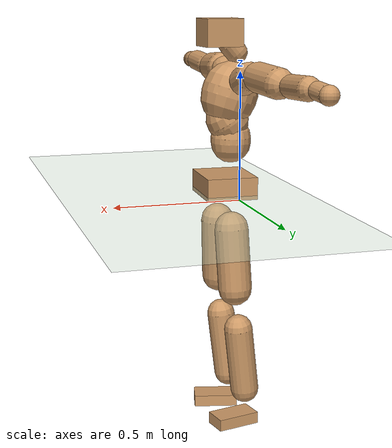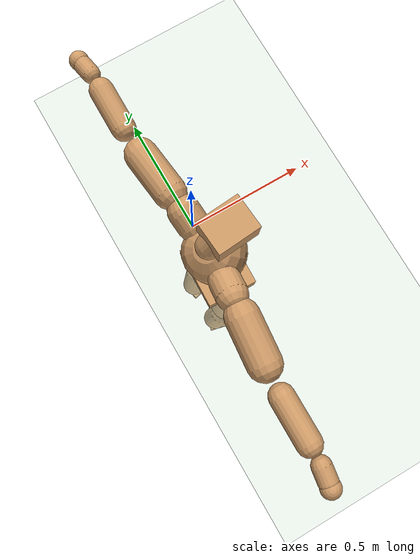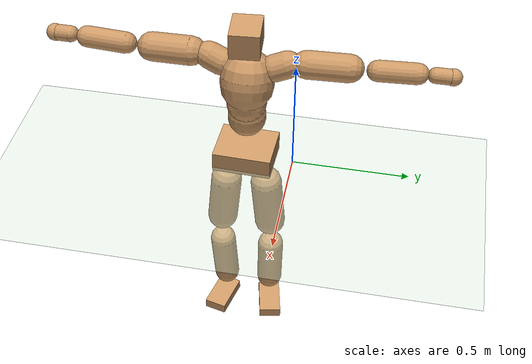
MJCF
<mujoco model="humanoid">
  <compiler coordinate="local" angle="radian"/>
  <default>
    <joint damping="0.0" armature="0.01" stiffness="0.0" limited="true"/>
    <geom conaffinity="1" condim="3" contype="7" margin="0.001" rgba="0.8 0.6 .4 1"/>
  </default>
  <asset>
    <texture type="skybox" builtin="gradient" rgb1=".4 .5 .6" rgb2="0 0 0" width="100" height="100"/>
    <texture builtin="flat" height="1278" mark="cross" markrgb="1 1 1" name="texgeom" random="0.01" rgb1="0.8 0.6 0.4" rgb2="0.8 0.6 0.4" type="cube" width="127"/>
    <texture builtin="checker" height="100" name="texplane" rgb1="0 0 0" rgb2="0.8 0.8 0.8" type="2d" width="100"/>
    <material name="MatPlane" reflectance="0.5" shininess="1" specular="1" texrepeat="60 60" texture="texplane"/>
    <material name="geom" texture="texgeom" texuniform="true"/>
  </asset>
  <worldbody>
    <light cutoff="100" diffuse="1 1 1" dir="-0 0 -1.3" directional="true" exponent="1" pos="0 0 1.3" specular=".1 .1 .1"/>
    <geom conaffinity="1" condim="3" name="floor" pos="0 0 0" rgba="0.8 0.9 0.8 1" size="100 100 .2" type="plane" material="MatPlane"/>
    <body name="Pelvis" pos="0.0018 -0.204 0.0402">
      <freejoint name="Pelvis"/>
      <geom type="box" contype="1" conaffinity="1" density="500" pos="-0.0056 0.0002 -0.0139" size="0.1033 0.1258 0.0449" quat="0.9999 0.0000 0.0000 -0.0163" name="Pelvis"/>
      <body name="L_Hip" pos="-0.0039 0.083 -0.0976">
        <joint name="L_Hip_x" type="hinge" pos="0 0 0" axis="1 0 0" stiffness="800" damping="80" armature="0.02" range="-180.0000 180.0000"/>
        <joint name="L_Hip_y" type="hinge" pos="0 0 0" axis="0 1 0" stiffness="800" damping="80" armature="0.02" range="-180.0000 180.0000"/>
        <joint name="L_Hip_z" type="hinge" pos="0 0 0" axis="0 0 1" stiffness="800" damping="80" armature="0.02" range="-180.0000 180.0000"/>
        <geom type="capsule" contype="1" conaffinity="1" density="500" fromto="-0.0037 0.0064 -0.0833 -0.0148 0.0256 -0.3332" size="0.0689" name="L_Hip"/>
        <body name="L_Knee" pos="-0.0185 0.0319 -0.4165">
          <joint name="L_Knee_x" type="hinge" pos="0 0 0" axis="1 0 0" stiffness="800" damping="80" armature="0.02" range="-180.0000 180.0000"/>
          <joint name="L_Knee_y" type="hinge" pos="0 0 0" axis="0 1 0" stiffness="800" damping="80" armature="0.02" range="-180.0000 180.0000"/>
          <joint name="L_Knee_z" type="hinge" pos="0 0 0" axis="0 0 1" stiffness="800" damping="80" armature="0.02" range="-180.0000 180.0000"/>
          <geom type="capsule" contype="1" conaffinity="1" density="500" fromto="-0.0106 -0.0026 -0.0904 -0.0424 -0.0103 -0.3615" size="0.0586" name="L_Knee"/>
          <body name="L_Ankle" pos="-0.0531 -0.0128 -0.4519">
            <joint name="L_Ankle_x" type="hinge" pos="0 0 0" axis="1 0 0" stiffness="800" damping="80" armature="0.02" range="-180.0000 180.0000"/>
            <joint name="L_Ankle_y" type="hinge" pos="0 0 0" axis="0 1 0" stiffness="800" damping="80" armature="0.02" range="-180.0000 180.0000"/>
            <joint name="L_Ankle_z" type="hinge" pos="0 0 0" axis="0 0 1" stiffness="800" damping="80" armature="0.02" range="-180.0000 180.0000"/>
            <geom type="box" contype="1" conaffinity="1" density="500" pos="0.0628 0.0134 -0.0320" size="0.0895 0.0502 0.0241" quat="0.9945 0.0000 0.0000 0.1051" name="L_Ankle"/>
            <body name="L_Toe" pos="0.1255 0.0268 -0.064">
              <joint name="L_Toe_x" type="hinge" pos="0 0 0" axis="1 0 0" stiffness="500" damping="50" armature="0.02" range="-180.0000 180.0000"/>
              <joint name="L_Toe_y" type="hinge" pos="0 0 0" axis="0 1 0" stiffness="500" damping="50" armature="0.02" range="-180.0000 180.0000"/>
              <joint name="L_Toe_z" type="hinge" pos="0 0 0" axis="0 0 1" stiffness="500" damping="50" armature="0.02" range="-180.0000 180.0000"/>
              <geom type="box" contype="1" conaffinity="1" density="500" pos="0.0000 0.0000 0.0307" size="0.0011 0.0025 0.0011" quat="0.9938 0.0000 0.0000 0.1109" name="L_Toe"/>
            </body>
          </body>
        </body>
      </body>
      <body name="R_Hip" pos="0.0008 -0.0803 -0.098">
        <joint name="R_Hip_x" type="hinge" pos="0 0 0" axis="1 0 0" stiffness="800" damping="80" armature="0.02" range="-180.0000 180.0000"/>
        <joint name="R_Hip_y" type="hinge" pos="0 0 0" axis="0 1 0" stiffness="800" damping="80" armature="0.02" range="-180.0000 180.0000"/>
        <joint name="R_Hip_z" type="hinge" pos="0 0 0" axis="0 0 1" stiffness="800" damping="80" armature="0.02" range="-180.0000 180.0000"/>
        <geom type="capsule" contype="1" conaffinity="1" density="500" fromto="-0.0040 -0.0082 -0.0840 -0.0159 -0.0327 -0.3361" size="0.0679" name="R_Hip"/>
        <body name="R_Knee" pos="-0.0199 -0.0409 -0.4202">
          <joint name="R_Knee_x" type="hinge" pos="0 0 0" axis="1 0 0" stiffness="800" damping="80" armature="0.02" range="-180.0000 180.0000"/>
          <joint name="R_Knee_y" type="hinge" pos="0 0 0" axis="0 1 0" stiffness="800" damping="80" armature="0.02" range="-180.0000 180.0000"/>
          <joint name="R_Knee_z" type="hinge" pos="0 0 0" axis="0 0 1" stiffness="800" damping="80" armature="0.02" range="-180.0000 180.0000"/>
          <geom type="capsule" contype="1" conaffinity="1" density="500" fromto="-0.0102 0.0032 -0.0908 -0.0409 0.0127 -0.3632" size="0.0586" name="R_Knee"/>
          <body name="R_Ankle" pos="-0.0511 0.0159 -0.4541">
            <joint name="R_Ankle_x" type="hinge" pos="0 0 0" axis="1 0 0" stiffness="800" damping="80" armature="0.02" range="-180.0000 180.0000"/>
            <joint name="R_Ankle_y" type="hinge" pos="0 0 0" axis="0 1 0" stiffness="800" damping="80" armature="0.02" range="-180.0000 180.0000"/>
            <joint name="R_Ankle_z" type="hinge" pos="0 0 0" axis="0 0 1" stiffness="800" damping="80" armature="0.02" range="-180.0000 180.0000"/>
            <geom type="box" contype="1" conaffinity="1" density="500" pos="0.0653 -0.0155 -0.0276" size="0.0919 0.0512 0.0238" quat="0.9932 0.0000 0.0000 -0.1164" name="R_Ankle"/>
            <body name="R_Toe" pos="0.1307 -0.0311 -0.0552">
              <joint name="R_Toe_x" type="hinge" pos="0 0 0" axis="1 0 0" stiffness="500" damping="50" armature="0.02" range="-180.0000 180.0000"/>
              <joint name="R_Toe_y" type="hinge" pos="0 0 0" axis="0 1 0" stiffness="500" damping="50" armature="0.02" range="-180.0000 180.0000"/>
              <joint name="R_Toe_z" type="hinge" pos="0 0 0" axis="0 0 1" stiffness="500" damping="50" armature="0.02" range="-180.0000 180.0000"/>
              <geom type="box" contype="1" conaffinity="1" density="500" pos="0.0000 0.0000 0.0289" size="0.001 0.0025 0.0012" quat="0.9942 0.0000 0.0000 -0.1076" name="R_Toe"/>
            </body>
          </body>
        </body>
      </body>
      <body name="Torso" pos="-0.0306 -0.0016 0.1119">
        <joint name="Torso_x" type="hinge" pos="0 0 0" axis="1 0 0" stiffness="1000" damping="100" armature="0.02" range="-180.0000 180.0000"/>
        <joint name="Torso_y" type="hinge" pos="0 0 0" axis="0 1 0" stiffness="1000" damping="100" armature="0.02" range="-180.0000 180.0000"/>
        <joint name="Torso_z" type="hinge" pos="0 0 0" axis="0 0 1" stiffness="1000" damping="100" armature="0.02" range="-180.0000 180.0000"/>
        <geom type="capsule" contype="1" conaffinity="1" density="500" fromto="-0.0011 0.0008 0.0665 -0.0008 0.0006 0.0444" size="0.0815" name="Torso"/>
        <body name="Spine" pos="-0.0019 0.0014 0.1109">
          <joint name="Spine_x" type="hinge" pos="0 0 0" axis="1 0 0" stiffness="1000" damping="100" armature="0.02" range="-180.0000 180.0000"/>
          <joint name="Spine_y" type="hinge" pos="0 0 0" axis="0 1 0" stiffness="1000" damping="100" armature="0.02" range="-180.0000 180.0000"/>
          <joint name="Spine_z" type="hinge" pos="0 0 0" axis="0 0 1" stiffness="1000" damping="100" armature="0.02" range="-180.0000 180.0000"/>
          <geom type="capsule" contype="1" conaffinity="1" density="500" fromto="0.0202 0.0010 0.0297 0.0135 0.0007 0.0198" size="0.0842" name="Spine"/>
          <body name="Chest" pos="0.0337 0.0017 0.0494">
            <joint name="Chest_x" type="hinge" pos="0 0 0" axis="1 0 0" stiffness="1000" damping="100" armature="0.02" range="-180.0000 180.0000"/>
            <joint name="Chest_y" type="hinge" pos="0 0 0" axis="0 1 0" stiffness="1000" damping="100" armature="0.02" range="-180.0000 180.0000"/>
            <joint name="Chest_z" type="hinge" pos="0 0 0" axis="0 0 1" stiffness="1000" damping="100" armature="0.02" range="-180.0000 180.0000"/>
            <geom type="capsule" contype="1" conaffinity="1" density="500" fromto="-0.0323 -0.0004 0.0999 -0.0216 -0.0003 0.0666" size="0.113" name="Chest"/>
            <body name="Neck" pos="-0.0638 -0.0004 0.2339">
              <joint name="Neck_x" type="hinge" pos="0 0 0" axis="1 0 0" stiffness="500" damping="50" armature="0.02" range="-180.0000 180.0000"/>
              <joint name="Neck_y" type="hinge" pos="0 0 0" axis="0 1 0" stiffness="500" damping="50" armature="0.02" range="-180.0000 180.0000"/>
              <joint name="Neck_z" type="hinge" pos="0 0 0" axis="0 0 1" stiffness="500" damping="50" armature="0.02" range="-180.0000 180.0000"/>
              <geom type="capsule" contype="1" conaffinity="1" density="500" fromto="0.0106 0.0005 0.0120 0.0424 0.0019 0.0478" size="0.0451" name="Neck"/>
              <body name="Head" pos="0.053 0.0024 0.0598">
                <joint name="Head_x" type="hinge" pos="0 0 0" axis="1 0 0" stiffness="500" damping="50" armature="0.02" range="-180.0000 180.0000"/>
                <joint name="Head_y" type="hinge" pos="0 0 0" axis="0 1 0" stiffness="500" damping="50" armature="0.02" range="-180.0000 180.0000"/>
                <joint name="Head_z" type="hinge" pos="0 0 0" axis="0 0 1" stiffness="500" damping="50" armature="0.02" range="-180.0000 180.0000"/>
                <geom type="box" contype="1" conaffinity="1" density="500" pos="0.0275 0.0022 0.0309" size="0.0767 0.062 0.0545" quat="0.9992 0.0000 0.0000 0.0399" name="Head"/>
              </body>
            </body>
            <body name="L_Thorax" pos="-0.0466 0.0866 0.1335">
              <joint name="L_Thorax_x" type="hinge" pos="0 0 0" axis="1 0 0" stiffness="500" damping="50" armature="0.02" range="-180.0000 180.0000"/>
              <joint name="L_Thorax_y" type="hinge" pos="0 0 0" axis="0 1 0" stiffness="500" damping="50" armature="0.02" range="-180.0000 180.0000"/>
              <joint name="L_Thorax_z" type="hinge" pos="0 0 0" axis="0 0 1" stiffness="500" damping="50" armature="0.02" range="-180.0000 180.0000"/>
              <geom type="capsule" contype="1" conaffinity="1" density="500" fromto="-0.0022 0.0184 0.0072 -0.0088 0.0738 0.0290" size="0.0577" name="L_Thorax"/>
              <body name="L_Shoulder" pos="-0.011 0.0922 0.0362">
                <joint name="L_Shoulder_x" type="hinge" pos="0 0 0" axis="1 0 0" stiffness="500" damping="50" armature="0.02" range="-720.0000 720.0000"/>
                <joint name="L_Shoulder_y" type="hinge" pos="0 0 0" axis="0 1 0" stiffness="500" damping="50" armature="0.02" range="-720.0000 720.0000"/>
                <joint name="L_Shoulder_z" type="hinge" pos="0 0 0" axis="0 0 1" stiffness="500" damping="50" armature="0.02" range="-720.0000 720.0000"/>
                <geom type="capsule" contype="1" conaffinity="1" density="500" fromto="-0.0062 0.0573 -0.0028 -0.0247 0.2294 -0.0110" size="0.059" name="L_Shoulder"/>
                <body name="L_Elbow" pos="-0.0308 0.2867 -0.0138">
                  <joint name="L_Elbow_x" type="hinge" pos="0 0 0" axis="1 0 0" stiffness="500" damping="50" armature="0.02" range="-720.0000 720.0000"/>
                  <joint name="L_Elbow_y" type="hinge" pos="0 0 0" axis="0 1 0" stiffness="500" damping="50" armature="0.02" range="-720.0000 720.0000"/>
                  <joint name="L_Elbow_z" type="hinge" pos="0 0 0" axis="0 0 1" stiffness="500" damping="50" armature="0.02" range="-720.0000 720.0000"/>
                  <geom type="capsule" contype="1" conaffinity="1" density="500" fromto="0.0002 0.0533 0.0027 0.0008 0.2131 0.0107" size="0.0442" name="L_Elbow"/>
                  <body name="L_Wrist" pos="0.001 0.2664 0.0134">
                    <joint name="L_Wrist_x" type="hinge" pos="0 0 0" axis="1 0 0" stiffness="300" damping="30" armature="0.02" range="-180.0000 180.0000"/>
                    <joint name="L_Wrist_y" type="hinge" pos="0 0 0" axis="0 1 0" stiffness="300" damping="30" armature="0.02" range="-180.0000 180.0000"/>
                    <joint name="L_Wrist_z" type="hinge" pos="0 0 0" axis="0 0 1" stiffness="300" damping="30" armature="0.02" range="-180.0000 180.0000"/>
                    <geom type="capsule" contype="1" conaffinity="1" density="500" fromto="-0.0029 0.0175 -0.0021 -0.0116 0.0700 -0.0084" size="0.0332" name="L_Wrist"/>
                    <body name="L_Hand" pos="-0.0145 0.0876 -0.0105">
                      <joint name="L_Hand_x" type="hinge" pos="0 0 0" axis="1 0 0" stiffness="300" damping="30" armature="0.02" range="-180.0000 180.0000"/>
                      <joint name="L_Hand_y" type="hinge" pos="0 0 0" axis="0 1 0" stiffness="300" damping="30" armature="0.02" range="-180.0000 180.0000"/>
                      <joint name="L_Hand_z" type="hinge" pos="0 0 0" axis="0 0 1" stiffness="300" damping="30" armature="0.02" range="-180.0000 180.0000"/>
                      <geom type="sphere" contype="1" conaffinity="1" density="500" size="0.0352" pos="0.0000 0.0000 0.0000" name="L_Hand"/>
                    </body>
                  </body>
                </body>
              </body>
            </body>
            <body name="R_Thorax" pos="-0.0513 -0.0883 0.1321">
              <joint name="R_Thorax_x" type="hinge" pos="0 0 0" axis="1 0 0" stiffness="500" damping="50" armature="0.02" range="-180.0000 180.0000"/>
              <joint name="R_Thorax_y" type="hinge" pos="0 0 0" axis="0 1 0" stiffness="500" damping="50" armature="0.02" range="-180.0000 180.0000"/>
              <joint name="R_Thorax_z" type="hinge" pos="0 0 0" axis="0 0 1" stiffness="500" damping="50" armature="0.02" range="-180.0000 180.0000"/>
              <geom type="capsule" contype="1" conaffinity="1" density="500" fromto="-0.0022 -0.0191 0.0079 -0.0089 -0.0765 0.0318" size="0.0572" name="R_Thorax"/>
              <body name="R_Shoulder" pos="-0.0111 -0.0956 0.0397">
                <joint name="R_Shoulder_x" type="hinge" pos="0 0 0" axis="1 0 0" stiffness="500" damping="50" armature="0.02" range="-720.0000 720.0000"/>
                <joint name="R_Shoulder_y" type="hinge" pos="0 0 0" axis="0 1 0" stiffness="500" damping="50" armature="0.02" range="-720.0000 720.0000"/>
                <joint name="R_Shoulder_z" type="hinge" pos="0 0 0" axis="0 0 1" stiffness="500" damping="50" armature="0.02" range="-720.0000 720.0000"/>
                <geom type="capsule" contype="1" conaffinity="1" density="500" fromto="-0.0050 -0.0567 -0.0039 -0.0201 -0.2266 -0.0158" size="0.0616" name="R_Shoulder"/>
                <body name="R_Elbow" pos="-0.0251 -0.2833 -0.0197">
                  <joint name="R_Elbow_x" type="hinge" pos="0 0 0" axis="1 0 0" stiffness="500" damping="50" armature="0.02" range="-720.0000 720.0000"/>
                  <joint name="R_Elbow_y" type="hinge" pos="0 0 0" axis="0 1 0" stiffness="500" damping="50" armature="0.02" range="-720.0000 720.0000"/>
                  <joint name="R_Elbow_z" type="hinge" pos="0 0 0" axis="0 0 1" stiffness="500" damping="50" armature="0.02" range="-720.0000 720.0000"/>
                  <geom type="capsule" contype="1" conaffinity="1" density="500" fromto="-0.0004 -0.0558 0.0030 -0.0015 -0.2232 0.0119" size="0.0453" name="R_Elbow"/>
                  <body name="R_Wrist" pos="-0.0019 -0.279 0.0149">
                    <joint name="R_Wrist_x" type="hinge" pos="0 0 0" axis="1 0 0" stiffness="300" damping="30" armature="0.02" range="-180.0000 180.0000"/>
                    <joint name="R_Wrist_y" type="hinge" pos="0 0 0" axis="0 1 0" stiffness="300" damping="30" armature="0.02" range="-180.0000 180.0000"/>
                    <joint name="R_Wrist_z" type="hinge" pos="0 0 0" axis="0 0 1" stiffness="300" damping="30" armature="0.02" range="-180.0000 180.0000"/>
                    <geom type="capsule" contype="1" conaffinity="1" density="500" fromto="-0.0024 -0.0182 -0.0017 -0.0097 -0.0726 -0.0066" size="0.0347" name="R_Wrist"/>
                    <body name="R_Hand" pos="-0.0121 -0.0908 -0.0083">
                      <joint name="R_Hand_x" type="hinge" pos="0 0 0" axis="1 0 0" stiffness="300" damping="30" armature="0.02" range="-180.0000 180.0000"/>
                      <joint name="R_Hand_y" type="hinge" pos="0 0 0" axis="0 1 0" stiffness="300" damping="30" armature="0.02" range="-180.0000 180.0000"/>
                      <joint name="R_Hand_z" type="hinge" pos="0 0 0" axis="0 0 1" stiffness="300" damping="30" armature="0.02" range="-180.0000 180.0000"/>
                      <geom type="sphere" contype="1" conaffinity="1" density="500" size="0.0364" pos="0.0000 0.0000 0.0000" name="R_Hand"/>
                    </body>
                  </body>
                </body>
              </body>
            </body>
          </body>
        </body>
      </body>
    </body>
  </worldbody>
  <actuator>
    <motor name="L_Hip_x" joint="L_Hip_x" gear="500"/>
    <motor name="L_Hip_y" joint="L_Hip_y" gear="500"/>
    <motor name="L_Hip_z" joint="L_Hip_z" gear="500"/>
    <motor name="L_Knee_x" joint="L_Knee_x" gear="500"/>
    <motor name="L_Knee_y" joint="L_Knee_y" gear="500"/>
    <motor name="L_Knee_z" joint="L_Knee_z" gear="500"/>
    <motor name="L_Ankle_x" joint="L_Ankle_x" gear="500"/>
    <motor name="L_Ankle_y" joint="L_Ankle_y" gear="500"/>
    <motor name="L_Ankle_z" joint="L_Ankle_z" gear="500"/>
    <motor name="L_Toe_x" joint="L_Toe_x" gear="500"/>
    <motor name="L_Toe_y" joint="L_Toe_y" gear="500"/>
    <motor name="L_Toe_z" joint="L_Toe_z" gear="500"/>
    <motor name="R_Hip_x" joint="R_Hip_x" gear="500"/>
    <motor name="R_Hip_y" joint="R_Hip_y" gear="500"/>
    <motor name="R_Hip_z" joint="R_Hip_z" gear="500"/>
    <motor name="R_Knee_x" joint="R_Knee_x" gear="500"/>
    <motor name="R_Knee_y" joint="R_Knee_y" gear="500"/>
    <motor name="R_Knee_z" joint="R_Knee_z" gear="500"/>
    <motor name="R_Ankle_x" joint="R_Ankle_x" gear="500"/>
    <motor name="R_Ankle_y" joint="R_Ankle_y" gear="500"/>
    <motor name="R_Ankle_z" joint="R_Ankle_z" gear="500"/>
    <motor name="R_Toe_x" joint="R_Toe_x" gear="500"/>
    <motor name="R_Toe_y" joint="R_Toe_y" gear="500"/>
    <motor name="R_Toe_z" joint="R_Toe_z" gear="500"/>
    <motor name="Torso_x" joint="Torso_x" gear="500"/>
    <motor name="Torso_y" joint="Torso_y" gear="500"/>
    <motor name="Torso_z" joint="Torso_z" gear="500"/>
    <motor name="Spine_x" joint="Spine_x" gear="500"/>
    <motor name="Spine_y" joint="Spine_y" gear="500"/>
    <motor name="Spine_z" joint="Spine_z" gear="500"/>
    <motor name="Chest_x" joint="Chest_x" gear="500"/>
    <motor name="Chest_y" joint="Chest_y" gear="500"/>
    <motor name="Chest_z" joint="Chest_z" gear="500"/>
    <motor name="Neck_x" joint="Neck_x" gear="500"/>
    <motor name="Neck_y" joint="Neck_y" gear="500"/>
    <motor name="Neck_z" joint="Neck_z" gear="500"/>
    <motor name="Head_x" joint="Head_x" gear="500"/>
    <motor name="Head_y" joint="Head_y" gear="500"/>
    <motor name="Head_z" joint="Head_z" gear="500"/>
    <motor name="L_Thorax_x" joint="L_Thorax_x" gear="500"/>
    <motor name="L_Thorax_y" joint="L_Thorax_y" gear="500"/>
    <motor name="L_Thorax_z" joint="L_Thorax_z" gear="500"/>
    <motor name="L_Shoulder_x" joint="L_Shoulder_x" gear="500"/>
    <motor name="L_Shoulder_y" joint="L_Shoulder_y" gear="500"/>
    <motor name="L_Shoulder_z" joint="L_Shoulder_z" gear="500"/>
    <motor name="L_Elbow_x" joint="L_Elbow_x" gear="500"/>
    <motor name="L_Elbow_y" joint="L_Elbow_y" gear="500"/>
    <motor name="L_Elbow_z" joint="L_Elbow_z" gear="500"/>
    <motor name="L_Wrist_x" joint="L_Wrist_x" gear="500"/>
    <motor name="L_Wrist_y" joint="L_Wrist_y" gear="500"/>
    <motor name="L_Wrist_z" joint="L_Wrist_z" gear="500"/>
    <motor name="L_Hand_x" joint="L_Hand_x" gear="500"/>
    <motor name="L_Hand_y" joint="L_Hand_y" gear="500"/>
    <motor name="L_Hand_z" joint="L_Hand_z" gear="500"/>
    <motor name="R_Thorax_x" joint="R_Thorax_x" gear="500"/>
    <motor name="R_Thorax_y" joint="R_Thorax_y" gear="500"/>
    <motor name="R_Thorax_z" joint="R_Thorax_z" gear="500"/>
    <motor name="R_Shoulder_x" joint="R_Shoulder_x" gear="500"/>
    <motor name="R_Shoulder_y" joint="R_Shoulder_y" gear="500"/>
    <motor name="R_Shoulder_z" joint="R_Shoulder_z" gear="500"/>
    <motor name="R_Elbow_x" joint="R_Elbow_x" gear="500"/>
    <motor name="R_Elbow_y" joint="R_Elbow_y" gear="500"/>
    <motor name="R_Elbow_z" joint="R_Elbow_z" gear="500"/>
    <motor name="R_Wrist_x" joint="R_Wrist_x" gear="500"/>
    <motor name="R_Wrist_y" joint="R_Wrist_y" gear="500"/>
    <motor name="R_Wrist_z" joint="R_Wrist_z" gear="500"/>
    <motor name="R_Hand_x" joint="R_Hand_x" gear="500"/>
    <motor name="R_Hand_y" joint="R_Hand_y" gear="500"/>
    <motor name="R_Hand_z" joint="R_Hand_z" gear="500"/>
  </actuator>
  <contact>
    <exclude body1="Torso" body2="Chest"/>
    <exclude body1="Head" body2="Chest"/>
    <exclude body1="R_Knee" body2="R_Toe"/>
    <exclude body1="R_Knee" body2="L_Ankle"/>
    <exclude body1="R_Knee" body2="L_Toe"/>
    <exclude body1="L_Knee" body2="L_Toe"/>
    <exclude body1="L_Knee" body2="R_Ankle"/>
    <exclude body1="L_Knee" body2="R_Toe"/>
    <exclude body1="L_Shoulder" body2="Chest"/>
    <exclude body1="R_Shoulder" body2="Chest"/>
  </contact>
  <sensor/>
  <size njmax="700" nconmax="700"/>
</mujoco>
